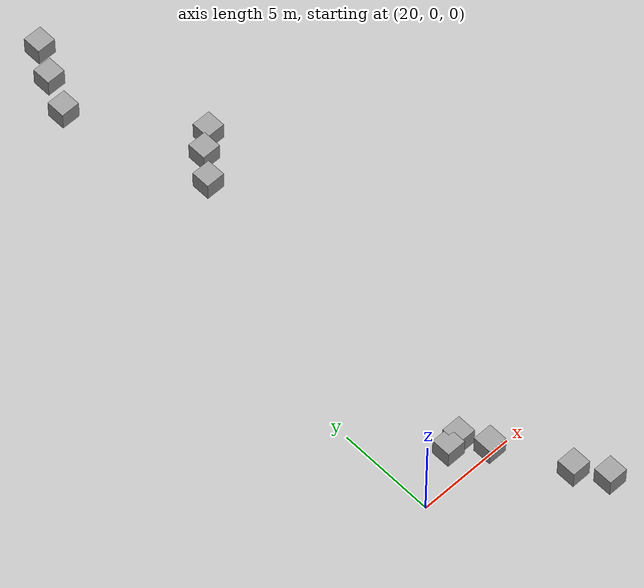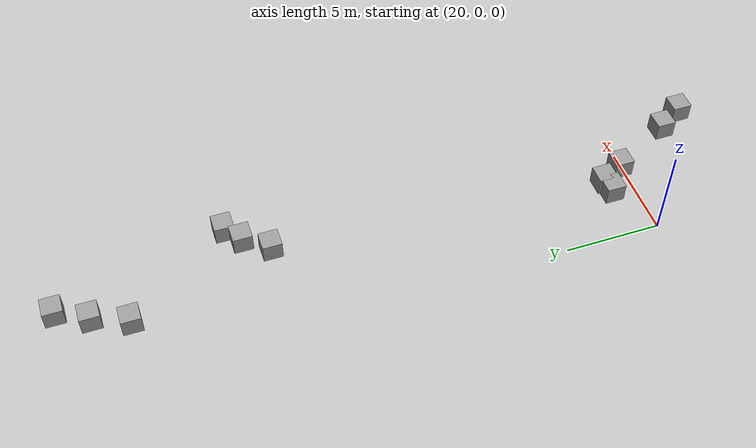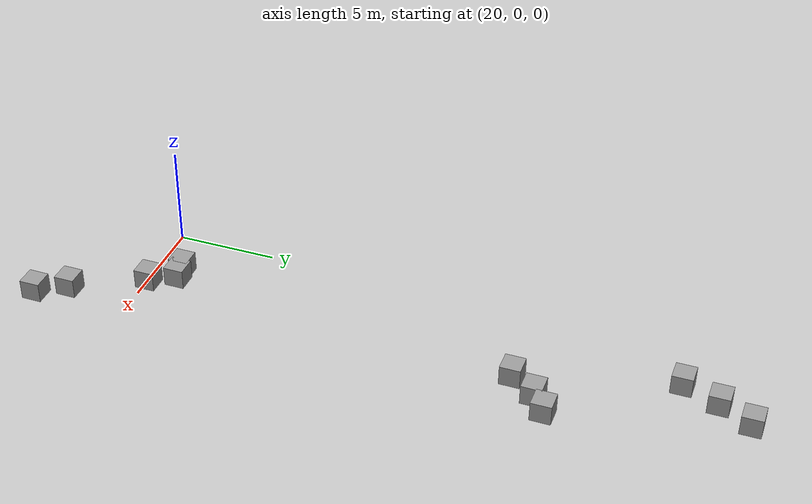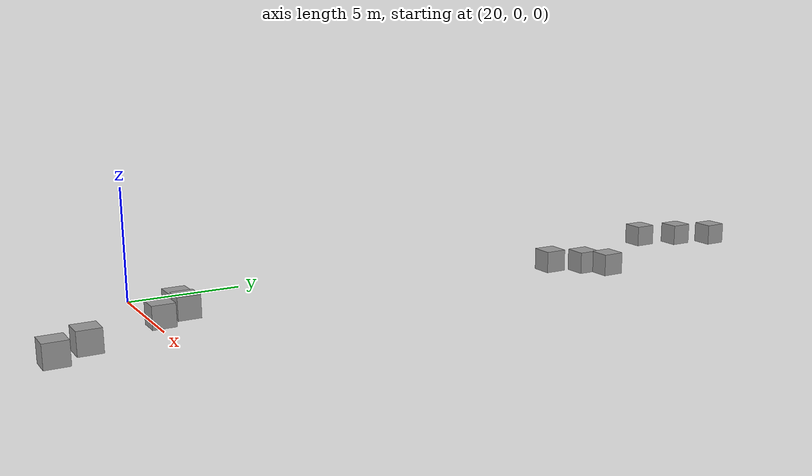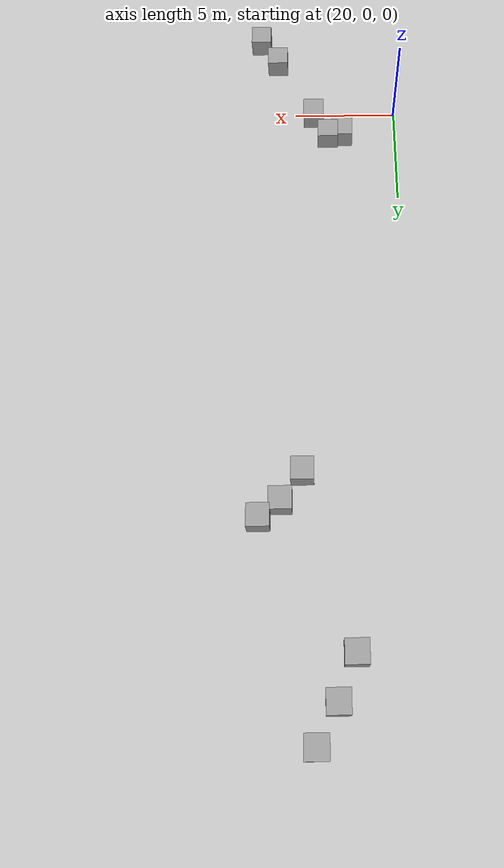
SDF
<sdf version="1.4">
 <world name="default">
  <scene>
   <sky><clouds><speed>12</speed></clouds></sky>
   <ambient>1.0 1.0 1.0 1.0</ambient>
   <shadows>false</shadows>
  </scene>
  <include><uri>model://urdf/models/sun</uri></include>
  <physics type="ode">
   <max_step_size>0.0025</max_step_size>
   <real_time_factor>0</real_time_factor>
   <real_time_update_rate>1000</real_time_update_rate>
   <gravity>0 0 -9.8</gravity>
  </physics>
  <model name="unit_box">
   <pose>22.6784 1.33269 0.5 0 -0 0</pose>
   <link name="link">
    <inertial>
     <mass>1</mass>
     <inertia>
      <ixx>0.166667</ixx>
      <ixy>0</ixy>
      <ixz>0</ixz>
      <iyy>0.166667</iyy>
      <iyz>0</iyz>
      <izz>0.166667</izz>
     </inertia>
    </inertial>
    <collision name="collision"><geometry><box><size>1 1 1</size></box></geometry></collision>
    <visual name="visual">
     <geometry><box><size>1 1 1</size></box></geometry>
     <material>
      <script><name>Gazebo/Grey</name><uri>file://media/materials/scripts/gazebo.material</uri></script>
     </material>
    </visual>
   </link>
  </model>
  <model name="unit_box_0">
   <pose>24.0878 0.175197 0.5 0 -0 0</pose>
   <link name="link">
    <inertial>
     <mass>1</mass>
     <inertia>
      <ixx>0.166667</ixx>
      <ixy>0</ixy>
      <ixz>0</ixz>
      <iyy>0.166667</iyy>
      <iyz>0</iyz>
      <izz>0.166667</izz>
     </inertia>
    </inertial>
    <collision name="collision"><geometry><box><size>1 1 1</size></box></geometry></collision>
    <visual name="visual">
     <geometry><box><size>1 1 1</size></box></geometry>
     <material>
      <script><name>Gazebo/Grey</name><uri>file://media/materials/scripts/gazebo.material</uri></script>
     </material>
    </visual>
   </link>
  </model>
  <model name="unit_box_1">
   <pose>23.397 1.43954 0.5 0 -0 0</pose>
   <link name="link">
    <inertial>
     <mass>1</mass>
     <inertia>
      <ixx>0.166667</ixx>
      <ixy>0</ixy>
      <ixz>0</ixz>
      <iyy>0.166667</iyy>
      <iyz>0</iyz>
      <izz>0.166667</izz>
     </inertia>
    </inertial>
    <collision name="collision"><geometry><box><size>1 1 1</size></box></geometry></collision>
    <visual name="visual">
     <geometry><box><size>1 1 1</size></box></geometry>
     <material>
      <script><name>Gazebo/Grey</name><uri>file://media/materials/scripts/gazebo.material</uri></script>
     </material>
    </visual>
   </link>
  </model>
  <model name="unit_box_2">
   <pose>25.9091 -3.18927 0.5 0 -0 0</pose>
   <link name="link">
    <inertial>
     <mass>1</mass>
     <inertia>
      <ixx>0.166667</ixx>
      <ixy>0</ixy>
      <ixz>0</ixz>
      <iyy>0.166667</iyy>
      <iyz>0</iyz>
      <izz>0.166667</izz>
     </inertia>
    </inertial>
    <collision name="collision"><geometry><box><size>1 1 1</size></box></geometry></collision>
    <visual name="visual">
     <geometry><box><size>1 1 1</size></box></geometry>
     <material>
      <script><name>Gazebo/Grey</name><uri>file://media/materials/scripts/gazebo.material</uri></script>
     </material>
    </visual>
   </link>
  </model>
  <model name="unit_box_3">
   <pose>26.7772 -4.58829 0.5 0 -0 0</pose>
   <link name="link">
    <inertial>
     <mass>1</mass>
     <inertia>
      <ixx>0.166667</ixx>
      <ixy>0</ixy>
      <ixz>0</ixz>
      <iyy>0.166667</iyy>
      <iyz>0</iyz>
      <izz>0.166667</izz>
     </inertia>
    </inertial>
    <collision name="collision"><geometry><box><size>1 1 1</size></box></geometry></collision>
    <visual name="visual">
     <geometry><box><size>1 1 1</size></box></geometry>
     <material>
      <script><name>Gazebo/Grey</name><uri>file://media/materials/scripts/gazebo.material</uri></script>
     </material>
    </visual>
   </link>
  </model>
  <model name="unit_box_4">
   <pose>24.7672 18.981 0.5 0 -0 0</pose>
   <link name="link">
    <inertial>
     <mass>1</mass>
     <inertia>
      <ixx>0.166667</ixx>
      <ixy>0</ixy>
      <ixz>0</ixz>
      <iyy>0.166667</iyy>
      <iyz>0</iyz>
      <izz>0.166667</izz>
     </inertia>
    </inertial>
    <collision name="collision"><geometry><box><size>1 1 1</size></box></geometry></collision>
    <visual name="visual">
     <geometry><box><size>1 1 1</size></box></geometry>
     <material>
      <script><name>Gazebo/Grey</name><uri>file://media/materials/scripts/gazebo.material</uri></script>
     </material>
    </visual>
   </link>
  </model>
  <model name="unit_box_5">
   <pose>25.704 20.2467 0.5 0 -0 0</pose>
   <link name="link">
    <inertial>
     <mass>1</mass>
     <inertia>
      <ixx>0.166667</ixx>
      <ixy>0</ixy>
      <ixz>0</ixz>
      <iyy>0.166667</iyy>
      <iyz>0</iyz>
      <izz>0.166667</izz>
     </inertia>
    </inertial>
    <collision name="collision"><geometry><box><size>1 1 1</size></box></geometry></collision>
    <visual name="visual">
     <geometry><box><size>1 1 1</size></box></geometry>
     <material>
      <script><name>Gazebo/Grey</name><uri>file://media/materials/scripts/gazebo.material</uri></script>
     </material>
    </visual>
   </link>
  </model>
  <model name="unit_box_6">
   <pose>26.6256 20.9537 0.5 0 -0 0</pose>
   <link name="link">
    <inertial>
     <mass>1</mass>
     <inertia>
      <ixx>0.166667</ixx>
      <ixy>0</ixy>
      <ixz>0</ixz>
      <iyy>0.166667</iyy>
      <iyz>0</iyz>
      <izz>0.166667</izz>
     </inertia>
    </inertial>
    <collision name="collision"><geometry><box><size>1 1 1</size></box></geometry></collision>
    <visual name="visual">
     <geometry><box><size>1 1 1</size></box></geometry>
     <material>
      <script><name>Gazebo/Grey</name><uri>file://media/materials/scripts/gazebo.material</uri></script>
     </material>
    </visual>
   </link>
  </model>
  <model name="unit_box_7">
   <pose>24.2698 29.7973 0.5 0 -0 0</pose>
   <link name="link">
    <inertial>
     <mass>1</mass>
     <inertia>
      <ixx>0.166667</ixx>
      <ixy>0</ixy>
      <ixz>0</ixz>
      <iyy>0.166667</iyy>
      <iyz>0</iyz>
      <izz>0.166667</izz>
     </inertia>
    </inertial>
    <collision name="collision"><geometry><box><size>1 1 1</size></box></geometry></collision>
    <visual name="visual">
     <geometry><box><size>1 1 1</size></box></geometry>
     <material>
      <script><name>Gazebo/Grey</name><uri>file://media/materials/scripts/gazebo.material</uri></script>
     </material>
    </visual>
   </link>
  </model>
  <model name="unit_box_8">
   <pose>23.4105 28.1997 0.5 0 -0 0</pose>
   <link name="link">
    <inertial>
     <mass>1</mass>
     <inertia>
      <ixx>0.166667</ixx>
      <ixy>0</ixy>
      <ixz>0</ixz>
      <iyy>0.166667</iyy>
      <iyz>0</iyz>
      <izz>0.166667</izz>
     </inertia>
    </inertial>
    <collision name="collision"><geometry><box><size>1 1 1</size></box></geometry></collision>
    <visual name="visual">
     <geometry><box><size>1 1 1</size></box></geometry>
     <material>
      <script><name>Gazebo/Grey</name><uri>file://media/materials/scripts/gazebo.material</uri></script>
     </material>
    </visual>
   </link>
  </model>
  <model name="unit_box_9">
   <pose>22.6485 26.3914 0.5 0 -0 0</pose>
   <link name="link">
    <inertial>
     <mass>1</mass>
     <inertia>
      <ixx>0.166667</ixx>
      <ixy>0</ixy>
      <ixz>0</ixz>
      <iyy>0.166667</iyy>
      <iyz>0</iyz>
      <izz>0.166667</izz>
     </inertia>
    </inertial>
    <collision name="collision"><geometry><box><size>1 1 1</size></box></geometry></collision>
    <visual name="visual">
     <geometry><box><size>1 1 1</size></box></geometry>
     <material>
      <script><name>Gazebo/Grey</name><uri>file://media/materials/scripts/gazebo.material</uri></script>
     </material>
    </visual>
   </link>
  </model>
 </world>
</sdf>
